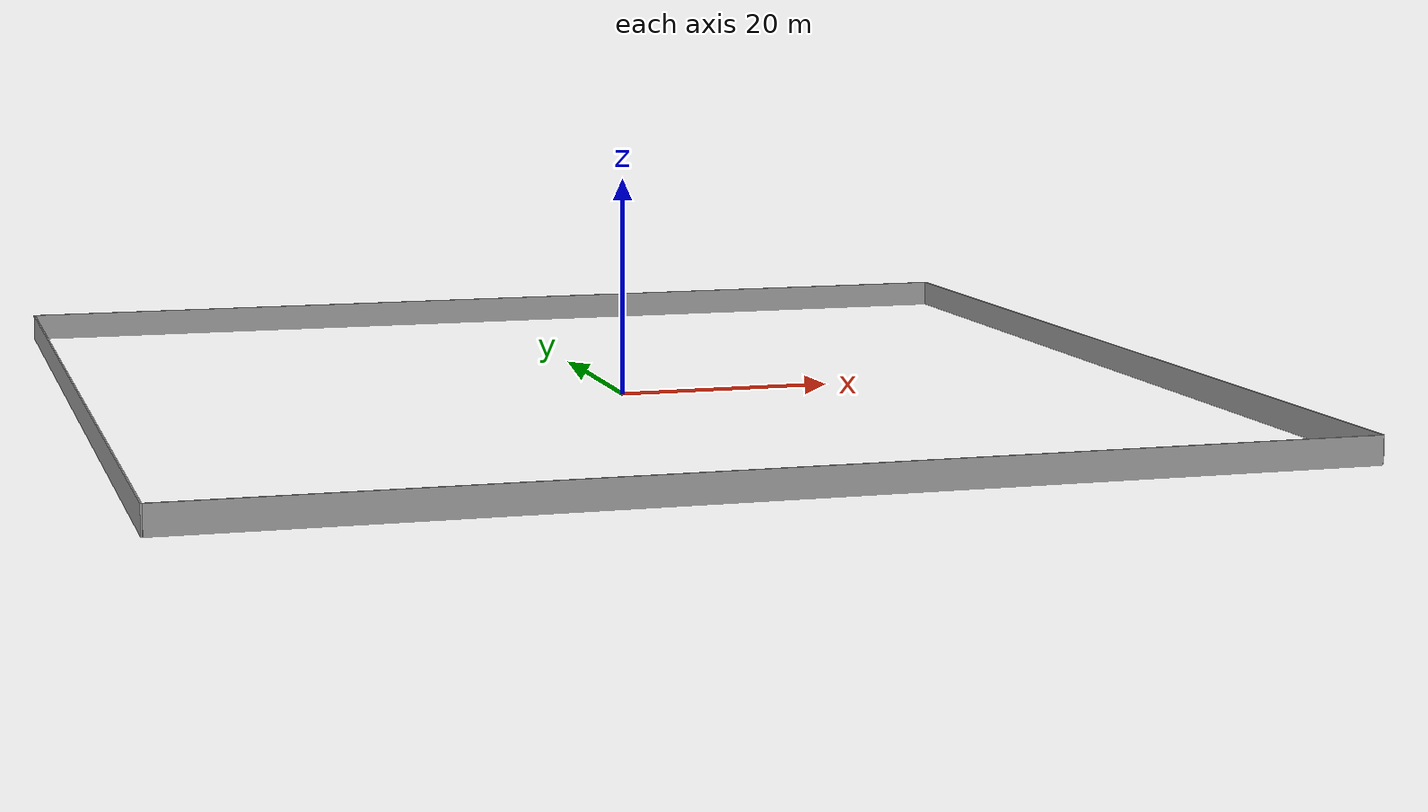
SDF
<?xml version='1.0'?>
<sdf version='1.6'>
  <model name='100by100'>
      <pose>0.019579 -0.010902 0 0 -0 0</pose>
      <link name='Wall_0'>
        <collision name='Wall_0_Collision'>
          <geometry>
            <box>
              <size>100 0.15 2.5</size>
            </box>
          </geometry>
          <pose>0 0 1.25 0 -0 0</pose>
          <max_contacts>10</max_contacts>
          <surface>
            <contact>
              <ode/>
            </contact>
            <bounce/>
            <friction>
              <torsional>
                <ode/>
              </torsional>
              <ode/>
            </friction>
          </surface>
        </collision>
        <visual name='Wall_0_Visual'>
          <pose>0 0 1.25 0 -0 0</pose>
          <geometry>
            <box>
              <size>100 0.15 2.5</size>
            </box>
          </geometry>
          <material>
            <script>
              <uri>file://media/materials/scripts/gazebo.material</uri>
              <name>Gazebo/Grey</name>
            </script>
            <ambient>1 1 1 1</ambient>
          </material>
          <meta>
            <layer>0</layer>
          </meta>
        </visual>
        <pose>-50.075 -0 0 0 -0 1.5708</pose>
        <self_collide>0</self_collide>
        <enable_wind>0</enable_wind>
        <kinematic>0</kinematic>
      </link>
      <link name='Wall_1'>
        <collision name='Wall_1_Collision'>
          <geometry>
            <box>
              <size>100 0.15 2.5</size>
            </box>
          </geometry>
          <pose>0 0 1.25 0 -0 0</pose>
          <max_contacts>10</max_contacts>
          <surface>
            <contact>
              <ode/>
            </contact>
            <bounce/>
            <friction>
              <torsional>
                <ode/>
              </torsional>
              <ode/>
            </friction>
          </surface>
        </collision>
        <visual name='Wall_1_Visual'>
          <pose>0 0 1.25 0 -0 0</pose>
          <geometry>
            <box>
              <size>100 0.15 2.5</size>
            </box>
          </geometry>
          <material>
            <script>
              <uri>file://media/materials/scripts/gazebo.material</uri>
              <name>Gazebo/Grey</name>
            </script>
            <ambient>1 1 1 1</ambient>
          </material>
          <meta>
            <layer>0</layer>
          </meta>
        </visual>
        <pose>0 50.075 0 0 -0 0</pose>
        <self_collide>0</self_collide>
        <enable_wind>0</enable_wind>
        <kinematic>0</kinematic>
      </link>
      <link name='Wall_2'>
        <collision name='Wall_2_Collision'>
          <geometry>
            <box>
              <size>100 0.15 2.5</size>
            </box>
          </geometry>
          <pose>0 0 1.25 0 -0 0</pose>
          <max_contacts>10</max_contacts>
          <surface>
            <contact>
              <ode/>
            </contact>
            <bounce/>
            <friction>
              <torsional>
                <ode/>
              </torsional>
              <ode/>
            </friction>
          </surface>
        </collision>
        <visual name='Wall_2_Visual'>
          <pose>0 0 1.25 0 -0 0</pose>
          <geometry>
            <box>
              <size>100 0.15 2.5</size>
            </box>
          </geometry>
          <material>
            <script>
              <uri>file://media/materials/scripts/gazebo.material</uri>
              <name>Gazebo/Grey</name>
            </script>
            <ambient>1 1 1 1</ambient>
          </material>
          <meta>
            <layer>0</layer>
          </meta>
        </visual>
        <pose>50.075 -0 0 0 -0 -1.5708</pose>
        <self_collide>0</self_collide>
        <enable_wind>0</enable_wind>
        <kinematic>0</kinematic>
      </link>
      <link name='Wall_3'>
        <collision name='Wall_3_Collision'>
          <geometry>
            <box>
              <size>100 0.15 2.5</size>
            </box>
          </geometry>
          <pose>0 0 1.25 0 -0 0</pose>
          <max_contacts>10</max_contacts>
          <surface>
            <contact>
              <ode/>
            </contact>
            <bounce/>
            <friction>
              <torsional>
                <ode/>
              </torsional>
              <ode/>
            </friction>
          </surface>
        </collision>
        <visual name='Wall_3_Visual'>
          <pose>0 0 1.25 0 -0 0</pose>
          <geometry>
            <box>
              <size>100 0.15 2.5</size>
            </box>
          </geometry>
          <material>
            <script>
              <uri>file://media/materials/scripts/gazebo.material</uri>
              <name>Gazebo/Grey</name>
            </script>
            <ambient>1 1 1 1</ambient>
          </material>
          <meta>
            <layer>0</layer>
          </meta>
        </visual>
        <pose>0 -50.075 0 0 -0 3.14159</pose>
        <self_collide>0</self_collide>
        <enable_wind>0</enable_wind>
        <kinematic>0</kinematic>
      </link>
      <static>1</static>
    </model>
</sdf>
